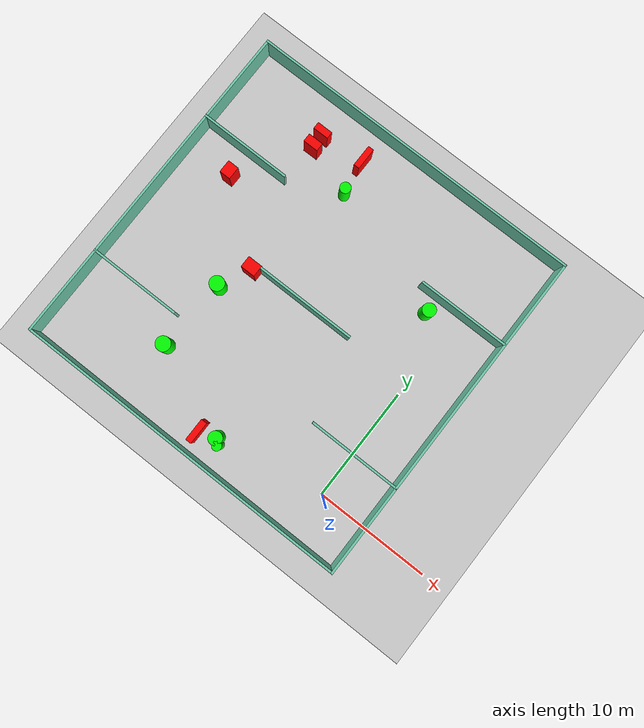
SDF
<sdf version="1.7">
 <world name="default">
  <light name="sun" type="directional">
   <pose>0 0 10 0 -0 0</pose>
   <diffuse>0.8 0.8 0.8 1</diffuse>
   <specular>0.2 0.2 0.2 1</specular>
   <attenuation>
    <range>1000</range>
    <constant>0.9</constant>
    <linear>0.01</linear>
    <quadratic>0.001</quadratic>
   </attenuation>
   <direction>-0.5 0.1 -0.9</direction>
   <spot><inner_angle>0</inner_angle><outer_angle>0</outer_angle><falloff>0</falloff></spot>
  </light>
  <model name="ground_plane">
   <static>1</static>
   <link name="link">
    <collision name="collision">
     <geometry><plane><normal>0 0 1</normal><size>100 100</size></plane></geometry>
     <surface>
      <contact><collide_bitmask>65535</collide_bitmask></contact>
      <friction><ode><mu>100</mu><mu2>50</mu2></ode></friction>
     </surface>
    </collision>
    <visual name="visual">
     <cast_shadows>0</cast_shadows>
     <geometry><plane><normal>0 0 1</normal><size>100 100</size></plane></geometry>
     <material>
      <script><uri>file://media/materials/scripts/gazebo.material</uri><name>Gazebo/Grey</name></script>
     </material>
    </visual>
   </link>
  </model>
  <gravity>0 0 -9.8</gravity>
  <magnetic_field>6e-06 2.3e-05 -4.2e-05</magnetic_field>
  <atmosphere type="adiabatic"/>
  <physics type="ode">
   <max_step_size>0.001</max_step_size>
   <real_time_factor>1</real_time_factor>
   <real_time_update_rate>1000</real_time_update_rate>
  </physics>
  <scene><ambient>0.4 0.4 0.4 1</ambient><background>0.7 0.7 0.7 1</background><shadows>1</shadows></scene>
  <spherical_coordinates>
   <surface_model>EARTH_WGS84</surface_model>
   <latitude_deg>0</latitude_deg>
   <longitude_deg>0</longitude_deg>
   <elevation>0</elevation>
   <heading_deg>0</heading_deg>
  </spherical_coordinates>
  <model name="my_base_walls">
   <link name="Wall_10">
    <collision name="Wall_10_Collision">
     <geometry><box><size>8.2 0.2 2.5</size></box></geometry>
     <pose>0 0 1.25 0 -0 0</pose>
    </collision>
    <visual name="Wall_10_Visual">
     <pose>0 0 1.25 0 -0 0</pose>
     <geometry><box><size>8.2 0.2 2.5</size></box></geometry>
     <material>
      <script><uri>file://media/materials/scripts/gazebo.material</uri><name>Gazebo/Grey</name></script>
      <ambient>0.435294 0.796078 0.67451 1</ambient>
     </material>
     <meta><layer>0</layer></meta>
    </visual>
    <pose>-11 -7 0 0 -0 0</pose>
   </link>
   <link name="Wall_12">
    <collision name="Wall_12_Collision">
     <geometry><box><size>8.2 0.2 2.5</size></box></geometry>
     <pose>0 0 1.25 0 -0 0</pose>
    </collision>
    <visual name="Wall_12_Visual">
     <pose>0 0 1.25 0 -0 0</pose>
     <geometry><box><size>8.2 0.2 2.5</size></box></geometry>
     <material>
      <script><uri>file://media/materials/scripts/gazebo.material</uri><name>Gazebo/Grey</name></script>
      <ambient>0.435294 0.796078 0.67451 1</ambient>
     </material>
     <meta><layer>0</layer></meta>
    </visual>
    <pose>-11 7 0 0 -0 0</pose>
   </link>
   <link name="Wall_14">
    <collision name="Wall_14_Collision">
     <geometry><box><size>8.2 0.2 2.5</size></box></geometry>
     <pose>0 0 1.25 0 -0 0</pose>
    </collision>
    <visual name="Wall_14_Visual">
     <pose>0 0 1.25 0 -0 0</pose>
     <geometry><box><size>8.2 0.2 2.5</size></box></geometry>
     <material>
      <script><uri>file://media/materials/scripts/gazebo.material</uri><name>Gazebo/Grey</name></script>
      <ambient>0.435294 0.796078 0.67451 1</ambient>
     </material>
     <meta><layer>0</layer></meta>
    </visual>
    <pose>11 7 0 0 -0 3.14159</pose>
   </link>
   <link name="Wall_16">
    <collision name="Wall_16_Collision">
     <geometry><box><size>10.2 0.2 2.5</size></box></geometry>
     <pose>0 0 1.25 0 -0 0</pose>
    </collision>
    <visual name="Wall_16_Visual">
     <pose>0 0 1.25 0 -0 0</pose>
     <geometry><box><size>10.2 0.2 2.5</size></box></geometry>
     <material>
      <script><uri>file://media/materials/scripts/gazebo.material</uri><name>Gazebo/Grey</name></script>
      <ambient>0.435294 0.796078 0.67451 1</ambient>
     </material>
     <meta><layer>0</layer></meta>
    </visual>
    <pose>0 0 0 0 -0 3.14159</pose>
   </link>
   <link name="Wall_2">
    <collision name="Wall_2_Collision">
     <geometry><box><size>30.2 0.2 2.5</size></box></geometry>
     <pose>0 0 1.25 0 -0 0</pose>
    </collision>
    <visual name="Wall_2_Visual">
     <pose>0 0 1.25 0 -0 0</pose>
     <geometry><box><size>30.2 0.2 2.5</size></box></geometry>
     <material>
      <script><uri>file://media/materials/scripts/gazebo.material</uri><name>Gazebo/Grey</name></script>
      <ambient>0.435294 0.796078 0.67451 1</ambient>
     </material>
     <meta><layer>0</layer></meta>
    </visual>
    <pose>0 -15 0 0 -0 3.14159</pose>
   </link>
   <link name="Wall_3">
    <collision name="Wall_3_Collision">
     <geometry><box><size>30.2 0.2 2.5</size></box></geometry>
     <pose>0 0 1.25 0 -0 0</pose>
    </collision>
    <visual name="Wall_3_Visual">
     <pose>0 0 1.25 0 -0 0</pose>
     <geometry><box><size>30.2 0.2 2.5</size></box></geometry>
     <material>
      <script><uri>file://media/materials/scripts/gazebo.material</uri><name>Gazebo/Grey</name></script>
      <ambient>0.435294 0.796078 0.67451 1</ambient>
     </material>
     <meta><layer>0</layer></meta>
    </visual>
    <pose>-15 0 0 0 -0 1.5708</pose>
   </link>
   <link name="Wall_4">
    <collision name="Wall_4_Collision">
     <geometry><box><size>30.2 0.2 2.5</size></box></geometry>
     <pose>0 0 1.25 0 -0 0</pose>
    </collision>
    <visual name="Wall_4_Visual">
     <pose>0 0 1.25 0 -0 0</pose>
     <geometry><box><size>30.2 0.2 2.5</size></box></geometry>
     <material>
      <script><uri>file://media/materials/scripts/gazebo.material</uri><name>Gazebo/Grey</name></script>
      <ambient>0.435294 0.796078 0.67451 1</ambient>
     </material>
     <meta><layer>0</layer></meta>
    </visual>
    <pose>0 15 0 0 -0 0</pose>
   </link>
   <link name="Wall_6">
    <collision name="Wall_6_Collision">
     <geometry><box><size>30.2 0.2 2.5</size></box></geometry>
     <pose>0 0 1.25 0 -0 0</pose>
    </collision>
    <visual name="Wall_6_Visual">
     <pose>0 0 1.25 0 -0 0</pose>
     <geometry><box><size>30.2 0.2 2.5</size></box></geometry>
     <material>
      <script><uri>file://media/materials/scripts/gazebo.material</uri><name>Gazebo/Grey</name></script>
      <ambient>0.435294 0.796078 0.67451 1</ambient>
     </material>
     <meta><layer>0</layer></meta>
    </visual>
    <pose>15 0 0 0 -0 1.5708</pose>
   </link>
   <link name="Wall_8">
    <collision name="Wall_8_Collision">
     <geometry><box><size>8.2 0.2 2.5</size></box></geometry>
     <pose>0 0 1.25 0 -0 0</pose>
    </collision>
    <visual name="Wall_8_Visual">
     <pose>0 0 1.25 0 -0 0</pose>
     <geometry><box><size>8.2 0.2 2.5</size></box></geometry>
     <material>
      <script><uri>file://media/materials/scripts/gazebo.material</uri><name>Gazebo/Grey</name></script>
      <ambient>0.435294 0.796078 0.67451 1</ambient>
     </material>
     <meta><layer>0</layer></meta>
    </visual>
    <pose>11 -7 0 0 -0 3.14159</pose>
   </link>
   <static>1</static>
   <pose>-11 11 0 0 -0 0</pose>
  </model>
  <model name="cylinder1">
   <static>1</static>
   <link name="link">
    <inertial>
     <mass>1</mass>
     <inertia><ixx>0.5</ixx><ixy>0</ixy><ixz>0</ixz><iyy>0.5</iyy><iyz>0</iyz><izz>1</izz></inertia>
    </inertial>
    <collision name="collision">
     <geometry><cylinder><radius>0.41529553108993666</radius><length>2.5</length></cylinder></geometry>
    </collision>
    <visual name="visual">
     <geometry><cylinder><radius>0.41529553108993666</radius><length>2.5</length></cylinder></geometry>
     <material>
      <ambient>0 1 0 1</ambient>
      <diffuse>0 1 0 1</diffuse>
      <specular>0.1 0.1 0.1 1</specular>
      <emissive>0 0 0 0</emissive>
     </material>
    </visual>
   </link>
   <pose>-8.848967930567937 -1.9902000273764355 1.25 0 0 0</pose>
  </model>
  <model name="cylinder2">
   <static>1</static>
   <link name="link">
    <inertial>
     <mass>1</mass>
     <inertia><ixx>0.5</ixx><ixy>0</ixy><ixz>0</ixz><iyy>0.5</iyy><iyz>0</iyz><izz>1</izz></inertia>
    </inertial>
    <collision name="collision">
     <geometry><cylinder><radius>0.5813548275959106</radius><length>2.5</length></cylinder></geometry>
    </collision>
    <visual name="visual">
     <geometry><cylinder><radius>0.5813548275959106</radius><length>2.5</length></cylinder></geometry>
     <material>
      <ambient>0 1 0 1</ambient>
      <diffuse>0 1 0 1</diffuse>
      <specular>0.1 0.1 0.1 1</specular>
      <emissive>0 0 0 0</emissive>
     </material>
    </visual>
   </link>
   <pose>-2.3216116407024927 16.540757227012808 1.25 0 0 0</pose>
  </model>
  <model name="cylinder3">
   <static>1</static>
   <link name="link">
    <inertial>
     <mass>1</mass>
     <inertia><ixx>0.5</ixx><ixy>0</ixy><ixz>0</ixz><iyy>0.5</iyy><iyz>0</iyz><izz>1</izz></inertia>
    </inertial>
    <collision name="collision">
     <geometry><cylinder><radius>0.4797205925568498</radius><length>2.5</length></cylinder></geometry>
    </collision>
    <visual name="visual">
     <geometry><cylinder><radius>0.4797205925568498</radius><length>2.5</length></cylinder></geometry>
     <material>
      <ambient>0 1 0 1</ambient>
      <diffuse>0 1 0 1</diffuse>
      <specular>0.1 0.1 0.1 1</specular>
      <emissive>0 0 0 0</emissive>
     </material>
    </visual>
   </link>
   <pose>-13.521476012630256 20.23667536409788 1.25 0 0 0</pose>
  </model>
  <model name="cylinder4">
   <static>1</static>
   <link name="link">
    <inertial>
     <mass>1</mass>
     <inertia><ixx>0.5</ixx><ixy>0</ixy><ixz>0</ixz><iyy>0.5</iyy><iyz>0</iyz><izz>1</izz></inertia>
    </inertial>
    <collision name="collision">
     <geometry><cylinder><radius>0.6453930937116686</radius><length>2.5</length></cylinder></geometry>
    </collision>
    <visual name="visual">
     <geometry><cylinder><radius>0.6453930937116686</radius><length>2.5</length></cylinder></geometry>
     <material>
      <ambient>0 1 0 1</ambient>
      <diffuse>0 1 0 1</diffuse>
      <specular>0.1 0.1 0.1 1</specular>
      <emissive>0 0 0 0</emissive>
     </material>
    </visual>
   </link>
   <pose>-16.76057012711002 7.8847745514053695 1.25 0 0 0</pose>
  </model>
  <model name="cylinder5">
   <static>1</static>
   <link name="link">
    <inertial>
     <mass>1</mass>
     <inertia><ixx>0.5</ixx><ixy>0</ixy><ixz>0</ixz><iyy>0.5</iyy><iyz>0</iyz><izz>1</izz></inertia>
    </inertial>
    <collision name="collision">
     <geometry><cylinder><radius>0.5885231383695062</radius><length>2.5</length></cylinder></geometry>
    </collision>
    <visual name="visual">
     <geometry><cylinder><radius>0.5885231383695062</radius><length>2.5</length></cylinder></geometry>
     <material>
      <ambient>0 1 0 1</ambient>
      <diffuse>0 1 0 1</diffuse>
      <specular>0.1 0.1 0.1 1</specular>
      <emissive>0 0 0 0</emissive>
     </material>
    </visual>
   </link>
   <pose>-9.286261572683937 -1.606742124198202 1.25 0 0 0</pose>
  </model>
  <model name="cylinder6">
   <static>1</static>
   <link name="link">
    <inertial>
     <mass>1</mass>
     <inertia><ixx>0.5</ixx><ixy>0</ixy><ixz>0</ixz><iyy>0.5</iyy><iyz>0</iyz><izz>1</izz></inertia>
    </inertial>
    <collision name="collision">
     <geometry><cylinder><radius>0.6410827521238328</radius><length>2.5</length></cylinder></geometry>
    </collision>
    <visual name="visual">
     <geometry><cylinder><radius>0.6410827521238328</radius><length>2.5</length></cylinder></geometry>
     <material>
      <ambient>0 1 0 1</ambient>
      <diffuse>0 1 0 1</diffuse>
      <specular>0.1 0.1 0.1 1</specular>
      <emissive>0 0 0 0</emissive>
     </material>
    </visual>
   </link>
   <pose>-17.079253913934117 1.566216265054745 1.25 0 0 0</pose>
  </model>
  <model name="box1">
   <static>1</static>
   <link name="link">
    <inertial>
     <mass>1</mass>
     <inertia><ixx>0.083</ixx><ixy>0</ixy><ixz>0</ixz><iyy>0.083</iyy><iyz>0</iyz><izz>0.083</izz></inertia>
    </inertial>
    <collision name="collision">
     <geometry><box><size>1.3412776181065225 0.7336600290641637 2.5</size></box></geometry>
    </collision>
    <visual name="visual">
     <geometry><box><size>1.3412776181065225 0.7336600290641637 2.5</size></box></geometry>
     <material>
      <ambient>1 0 0 1</ambient>
      <diffuse>1 0 0 1</diffuse>
      <specular>0.1 0.1 0.1 1</specular>
      <emissive>0 0 0 0</emissive>
     </material>
    </visual>
    <sensor name="my_contact" type="contact">
     <contact><collision>box_collision</collision><topic>__default_topic__</topic></contact>
    </sensor>
   </link>
   <pose>-17.85660858236736 21.592238076781786 1.25 0 0 0</pose>
  </model>
  <model name="box2">
   <static>1</static>
   <link name="link">
    <inertial>
     <mass>1</mass>
     <inertia><ixx>0.083</ixx><ixy>0</ixy><ixz>0</ixz><iyy>0.083</iyy><iyz>0</iyz><izz>0.083</izz></inertia>
    </inertial>
    <collision name="collision">
     <geometry><box><size>0.5061658658274316 1.9268238430731834 2.5</size></box></geometry>
    </collision>
    <visual name="visual">
     <geometry><box><size>0.5061658658274316 1.9268238430731834 2.5</size></box></geometry>
     <material>
      <ambient>1 0 0 1</ambient>
      <diffuse>1 0 0 1</diffuse>
      <specular>0.1 0.1 0.1 1</specular>
      <emissive>0 0 0 0</emissive>
     </material>
    </visual>
    <sensor name="my_contact" type="contact">
     <contact><collision>box_collision</collision><topic>__default_topic__</topic></contact>
    </sensor>
   </link>
   <pose>-13.903721178321126 23.121405225733472 1.25 0 0 0</pose>
  </model>
  <model name="box3">
   <static>1</static>
   <link name="link">
    <inertial>
     <mass>1</mass>
     <inertia><ixx>0.083</ixx><ixy>0</ixy><ixz>0</ixz><iyy>0.083</iyy><iyz>0</iyz><izz>0.083</izz></inertia>
    </inertial>
    <collision name="collision">
     <geometry><box><size>0.5241838458404029 1.9620868921116776 2.5</size></box></geometry>
    </collision>
    <visual name="visual">
     <geometry><box><size>0.5241838458404029 1.9620868921116776 2.5</size></box></geometry>
     <material>
      <ambient>1 0 0 1</ambient>
      <diffuse>1 0 0 1</diffuse>
      <specular>0.1 0.1 0.1 1</specular>
      <emissive>0 0 0 0</emissive>
     </material>
    </visual>
    <sensor name="my_contact" type="contact">
     <contact><collision>box_collision</collision><topic>__default_topic__</topic></contact>
    </sensor>
   </link>
   <pose>-10.78020726809794 -2.1030697451373532 1.25 0 0 0</pose>
  </model>
  <model name="box4">
   <static>1</static>
   <link name="link">
    <inertial>
     <mass>1</mass>
     <inertia><ixx>0.083</ixx><ixy>0</ixy><ixz>0</ixz><iyy>0.083</iyy><iyz>0</iyz><izz>0.083</izz></inertia>
    </inertial>
    <collision name="collision">
     <geometry><box><size>1.296963429253053 1.0236519264680561 2.5</size></box></geometry>
    </collision>
    <visual name="visual">
     <geometry><box><size>1.296963429253053 1.0236519264680561 2.5</size></box></geometry>
     <material>
      <ambient>1 0 0 1</ambient>
      <diffuse>1 0 0 1</diffuse>
      <specular>0.1 0.1 0.1 1</specular>
      <emissive>0 0 0 0</emissive>
     </material>
    </visual>
    <sensor name="my_contact" type="contact">
     <contact><collision>box_collision</collision><topic>__default_topic__</topic></contact>
    </sensor>
   </link>
   <pose>-15.465822808089277 10.628933758335851 1.25 0 0 0</pose>
  </model>
  <model name="box5">
   <static>1</static>
   <link name="link">
    <inertial>
     <mass>1</mass>
     <inertia><ixx>0.083</ixx><ixy>0</ixy><ixz>0</ixz><iyy>0.083</iyy><iyz>0</iyz><izz>0.083</izz></inertia>
    </inertial>
    <collision name="collision">
     <geometry><box><size>0.9894513069040147 1.1271499310702011 2.5</size></box></geometry>
    </collision>
    <visual name="visual">
     <geometry><box><size>0.9894513069040147 1.1271499310702011 2.5</size></box></geometry>
     <material>
      <ambient>1 0 0 1</ambient>
      <diffuse>1 0 0 1</diffuse>
      <specular>0.1 0.1 0.1 1</specular>
      <emissive>0 0 0 0</emissive>
     </material>
    </visual>
    <sensor name="my_contact" type="contact">
     <contact><collision>box_collision</collision><topic>__default_topic__</topic></contact>
    </sensor>
   </link>
   <pose>-21.757265166097593 15.652243515219904 1.25 0 0 0</pose>
  </model>
  <model name="box6">
   <static>1</static>
   <link name="link">
    <inertial>
     <mass>1</mass>
     <inertia><ixx>0.083</ixx><ixy>0</ixy><ixz>0</ixz><iyy>0.083</iyy><iyz>0</iyz><izz>0.083</izz></inertia>
    </inertial>
    <collision name="collision">
     <geometry><box><size>1.3831348384383033 0.6048261955391349 2.5</size></box></geometry>
    </collision>
    <visual name="visual">
     <geometry><box><size>1.3831348384383033 0.6048261955391349 2.5</size></box></geometry>
     <material>
      <ambient>1 0 0 1</ambient>
      <diffuse>1 0 0 1</diffuse>
      <specular>0.1 0.1 0.1 1</specular>
      <emissive>0 0 0 0</emissive>
     </material>
    </visual>
    <sensor name="my_contact" type="contact">
     <contact><collision>box_collision</collision><topic>__default_topic__</topic></contact>
    </sensor>
   </link>
   <pose>-17.85689173144835 22.856565313750956 1.25 0 0 0</pose>
  </model>
 </world>
</sdf>
